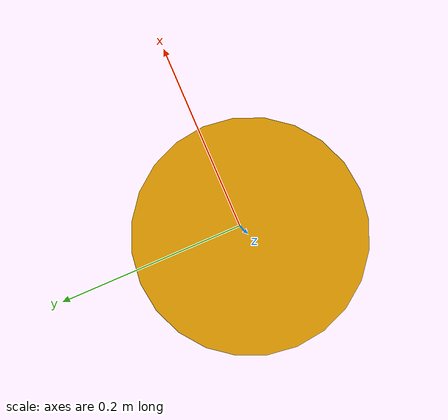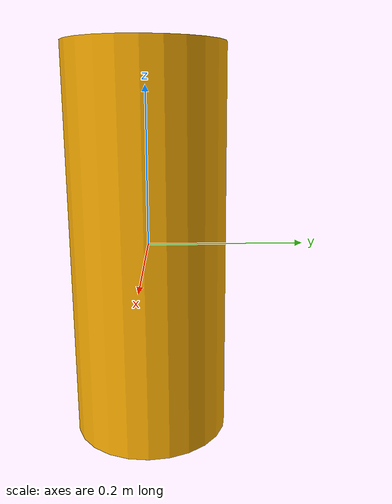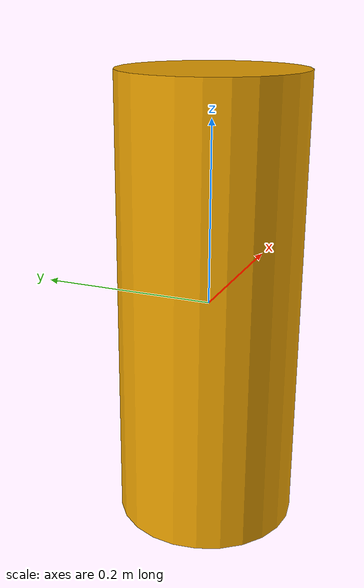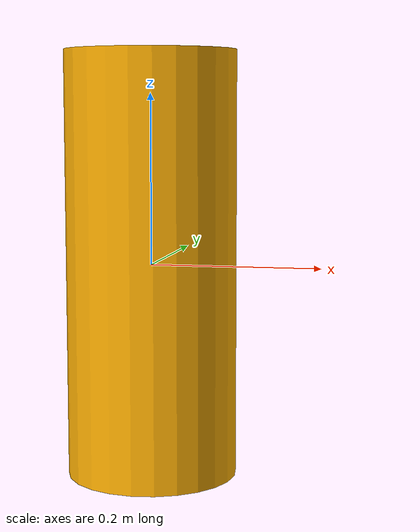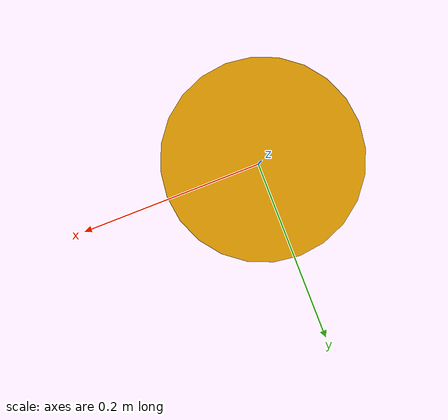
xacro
<?xml version="1.0"?>
<robot name="myfirst"
    xmlns:xacro="http://www.ros.org/wiki/xacro">>
    <xacro:include filename="$(find mulecar_description)/urdf/macros.xacro" />
    <xacro:property name="radius" value="0.1"/>
    <xacro:property name="height" value="0.5"/>
    <link name="base_link">
        <inertial>
            <origin xyz="0 0 0" rpy="0 0 0"/>
            <mass value="5" />
            <xacro:cylinder_inertia m="5" r="${radius}" h="${height}"/>
        </inertial>
        <collision>
            <origin xyz="0 0 0" rpy="0 0 0"/>
            <geometry>
                <cylinder radius="${radius}" length="${height}"/>
            </geometry>
        </collision>
        <visual>
            <origin rpy="0.0 0 0" xyz="0 0 0"/>
            <geometry>
                <cylinder radius="${radius}" length="${height}"/>
            </geometry>
        </visual>
    </link>
</robot>

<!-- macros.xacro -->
<robot xmlns:xacro="http://www.ros.org/wiki/xacro">
  <xacro:macro name="cylinder_inertia" params="m r h">
    <inertia  ixx="${m*(3*r*r+h*h)/12}" ixy = "0" ixz = "0"
      iyy="${m*(3*r*r+h*h)/12}" iyz = "0"
      izz="${m*r*r/2}"
    />
  </xacro:macro>
</robot>
